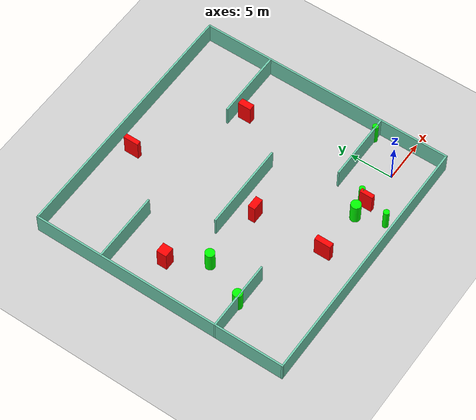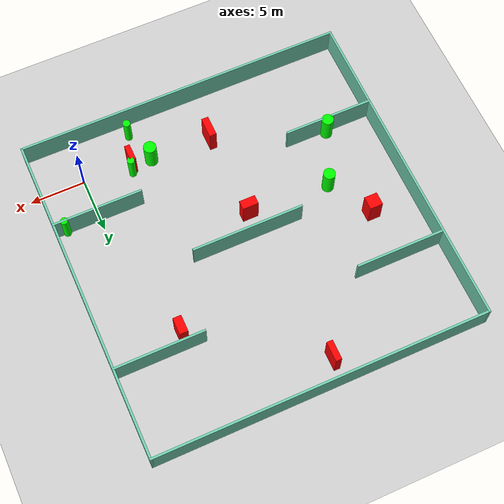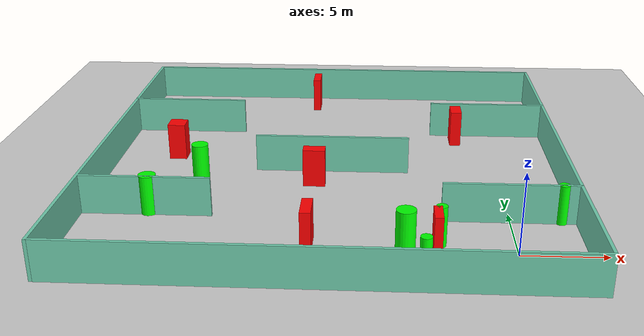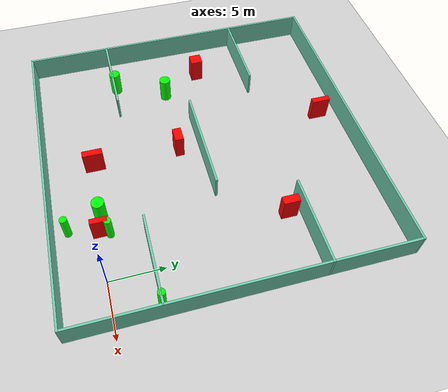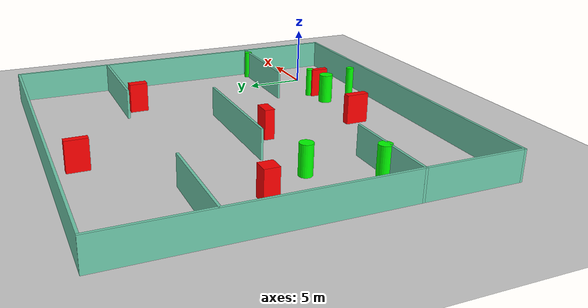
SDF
<sdf version="1.7">
 <world name="default">
  <light name="sun" type="directional">
   <pose>0 0 10 0 -0 0</pose>
   <diffuse>0.8 0.8 0.8 1</diffuse>
   <specular>0.2 0.2 0.2 1</specular>
   <attenuation>
    <range>1000</range>
    <constant>0.9</constant>
    <linear>0.01</linear>
    <quadratic>0.001</quadratic>
   </attenuation>
   <direction>-0.5 0.1 -0.9</direction>
   <spot><inner_angle>0</inner_angle><outer_angle>0</outer_angle><falloff>0</falloff></spot>
  </light>
  <model name="ground_plane">
   <static>1</static>
   <link name="link">
    <collision name="collision">
     <geometry><plane><normal>0 0 1</normal><size>100 100</size></plane></geometry>
     <surface>
      <contact><collide_bitmask>65535</collide_bitmask></contact>
      <friction><ode><mu>100</mu><mu2>50</mu2></ode></friction>
     </surface>
    </collision>
    <visual name="visual">
     <cast_shadows>0</cast_shadows>
     <geometry><plane><normal>0 0 1</normal><size>100 100</size></plane></geometry>
     <material>
      <script><uri>file://media/materials/scripts/gazebo.material</uri><name>Gazebo/Grey</name></script>
     </material>
    </visual>
   </link>
  </model>
  <gravity>0 0 -9.8</gravity>
  <magnetic_field>6e-06 2.3e-05 -4.2e-05</magnetic_field>
  <atmosphere type="adiabatic"/>
  <physics type="ode">
   <max_step_size>0.001</max_step_size>
   <real_time_factor>1</real_time_factor>
   <real_time_update_rate>1000</real_time_update_rate>
  </physics>
  <scene><ambient>0.4 0.4 0.4 1</ambient><background>0.7 0.7 0.7 1</background><shadows>1</shadows></scene>
  <spherical_coordinates>
   <surface_model>EARTH_WGS84</surface_model>
   <latitude_deg>0</latitude_deg>
   <longitude_deg>0</longitude_deg>
   <elevation>0</elevation>
   <heading_deg>0</heading_deg>
  </spherical_coordinates>
  <model name="my_base_walls">
   <link name="Wall_10">
    <collision name="Wall_10_Collision">
     <geometry><box><size>8.2 0.2 2.5</size></box></geometry>
     <pose>0 0 1.25 0 -0 0</pose>
    </collision>
    <visual name="Wall_10_Visual">
     <pose>0 0 1.25 0 -0 0</pose>
     <geometry><box><size>8.2 0.2 2.5</size></box></geometry>
     <material>
      <script><uri>file://media/materials/scripts/gazebo.material</uri><name>Gazebo/Grey</name></script>
      <ambient>0.435294 0.796078 0.67451 1</ambient>
     </material>
     <meta><layer>0</layer></meta>
    </visual>
    <pose>-11 -7 0 0 -0 0</pose>
   </link>
   <link name="Wall_12">
    <collision name="Wall_12_Collision">
     <geometry><box><size>8.2 0.2 2.5</size></box></geometry>
     <pose>0 0 1.25 0 -0 0</pose>
    </collision>
    <visual name="Wall_12_Visual">
     <pose>0 0 1.25 0 -0 0</pose>
     <geometry><box><size>8.2 0.2 2.5</size></box></geometry>
     <material>
      <script><uri>file://media/materials/scripts/gazebo.material</uri><name>Gazebo/Grey</name></script>
      <ambient>0.435294 0.796078 0.67451 1</ambient>
     </material>
     <meta><layer>0</layer></meta>
    </visual>
    <pose>-11 7 0 0 -0 0</pose>
   </link>
   <link name="Wall_14">
    <collision name="Wall_14_Collision">
     <geometry><box><size>8.2 0.2 2.5</size></box></geometry>
     <pose>0 0 1.25 0 -0 0</pose>
    </collision>
    <visual name="Wall_14_Visual">
     <pose>0 0 1.25 0 -0 0</pose>
     <geometry><box><size>8.2 0.2 2.5</size></box></geometry>
     <material>
      <script><uri>file://media/materials/scripts/gazebo.material</uri><name>Gazebo/Grey</name></script>
      <ambient>0.435294 0.796078 0.67451 1</ambient>
     </material>
     <meta><layer>0</layer></meta>
    </visual>
    <pose>11 7 0 0 -0 3.14159</pose>
   </link>
   <link name="Wall_16">
    <collision name="Wall_16_Collision">
     <geometry><box><size>10.2 0.2 2.5</size></box></geometry>
     <pose>0 0 1.25 0 -0 0</pose>
    </collision>
    <visual name="Wall_16_Visual">
     <pose>0 0 1.25 0 -0 0</pose>
     <geometry><box><size>10.2 0.2 2.5</size></box></geometry>
     <material>
      <script><uri>file://media/materials/scripts/gazebo.material</uri><name>Gazebo/Grey</name></script>
      <ambient>0.435294 0.796078 0.67451 1</ambient>
     </material>
     <meta><layer>0</layer></meta>
    </visual>
    <pose>0 0 0 0 -0 3.14159</pose>
   </link>
   <link name="Wall_2">
    <collision name="Wall_2_Collision">
     <geometry><box><size>30.2 0.2 2.5</size></box></geometry>
     <pose>0 0 1.25 0 -0 0</pose>
    </collision>
    <visual name="Wall_2_Visual">
     <pose>0 0 1.25 0 -0 0</pose>
     <geometry><box><size>30.2 0.2 2.5</size></box></geometry>
     <material>
      <script><uri>file://media/materials/scripts/gazebo.material</uri><name>Gazebo/Grey</name></script>
      <ambient>0.435294 0.796078 0.67451 1</ambient>
     </material>
     <meta><layer>0</layer></meta>
    </visual>
    <pose>0 -15 0 0 -0 3.14159</pose>
   </link>
   <link name="Wall_3">
    <collision name="Wall_3_Collision">
     <geometry><box><size>30.2 0.2 2.5</size></box></geometry>
     <pose>0 0 1.25 0 -0 0</pose>
    </collision>
    <visual name="Wall_3_Visual">
     <pose>0 0 1.25 0 -0 0</pose>
     <geometry><box><size>30.2 0.2 2.5</size></box></geometry>
     <material>
      <script><uri>file://media/materials/scripts/gazebo.material</uri><name>Gazebo/Grey</name></script>
      <ambient>0.435294 0.796078 0.67451 1</ambient>
     </material>
     <meta><layer>0</layer></meta>
    </visual>
    <pose>-15 0 0 0 -0 1.5708</pose>
   </link>
   <link name="Wall_4">
    <collision name="Wall_4_Collision">
     <geometry><box><size>30.2 0.2 2.5</size></box></geometry>
     <pose>0 0 1.25 0 -0 0</pose>
    </collision>
    <visual name="Wall_4_Visual">
     <pose>0 0 1.25 0 -0 0</pose>
     <geometry><box><size>30.2 0.2 2.5</size></box></geometry>
     <material>
      <script><uri>file://media/materials/scripts/gazebo.material</uri><name>Gazebo/Grey</name></script>
      <ambient>0.435294 0.796078 0.67451 1</ambient>
     </material>
     <meta><layer>0</layer></meta>
    </visual>
    <pose>0 15 0 0 -0 0</pose>
   </link>
   <link name="Wall_6">
    <collision name="Wall_6_Collision">
     <geometry><box><size>30.2 0.2 2.5</size></box></geometry>
     <pose>0 0 1.25 0 -0 0</pose>
    </collision>
    <visual name="Wall_6_Visual">
     <pose>0 0 1.25 0 -0 0</pose>
     <geometry><box><size>30.2 0.2 2.5</size></box></geometry>
     <material>
      <script><uri>file://media/materials/scripts/gazebo.material</uri><name>Gazebo/Grey</name></script>
      <ambient>0.435294 0.796078 0.67451 1</ambient>
     </material>
     <meta><layer>0</layer></meta>
    </visual>
    <pose>15 0 0 0 -0 1.5708</pose>
   </link>
   <link name="Wall_8">
    <collision name="Wall_8_Collision">
     <geometry><box><size>8.2 0.2 2.5</size></box></geometry>
     <pose>0 0 1.25 0 -0 0</pose>
    </collision>
    <visual name="Wall_8_Visual">
     <pose>0 0 1.25 0 -0 0</pose>
     <geometry><box><size>8.2 0.2 2.5</size></box></geometry>
     <material>
      <script><uri>file://media/materials/scripts/gazebo.material</uri><name>Gazebo/Grey</name></script>
      <ambient>0.435294 0.796078 0.67451 1</ambient>
     </material>
     <meta><layer>0</layer></meta>
    </visual>
    <pose>11 -7 0 0 -0 3.14159</pose>
   </link>
   <static>1</static>
   <pose>-11 11 0 0 -0 0</pose>
  </model>
  <model name="cylinder1">
   <static>1</static>
   <link name="link">
    <inertial>
     <mass>1</mass>
     <inertia><ixx>0.5</ixx><ixy>0</ixy><ixz>0</ixz><iyy>0.5</iyy><iyz>0</iyz><izz>1</izz></inertia>
    </inertial>
    <collision name="collision">
     <geometry><cylinder><radius>0.3335902493551201</radius><length>2.5</length></cylinder></geometry>
    </collision>
    <visual name="visual">
     <geometry><cylinder><radius>0.3335902493551201</radius><length>2.5</length></cylinder></geometry>
     <material>
      <ambient>0 1 0 1</ambient>
      <diffuse>0 1 0 1</diffuse>
      <specular>0.1 0.1 0.1 1</specular>
      <emissive>0 0 0 0</emissive>
     </material>
    </visual>
   </link>
   <pose>-5.3332053486320845 -2.670968357077099 1.25 0 0 0</pose>
  </model>
  <model name="cylinder2">
   <static>1</static>
   <link name="link">
    <inertial>
     <mass>1</mass>
     <inertia><ixx>0.5</ixx><ixy>0</ixy><ixz>0</ixz><iyy>0.5</iyy><iyz>0</iyz><izz>1</izz></inertia>
    </inertial>
    <collision name="collision">
     <geometry><cylinder><radius>0.3280164197780906</radius><length>2.5</length></cylinder></geometry>
    </collision>
    <visual name="visual">
     <geometry><cylinder><radius>0.3280164197780906</radius><length>2.5</length></cylinder></geometry>
     <material>
      <ambient>0 1 0 1</ambient>
      <diffuse>0 1 0 1</diffuse>
      <specular>0.1 0.1 0.1 1</specular>
      <emissive>0 0 0 0</emissive>
     </material>
    </visual>
   </link>
   <pose>-4.3039774152890935 0.9352588505713437 1.25 0 0 0</pose>
  </model>
  <model name="cylinder3">
   <static>1</static>
   <link name="link">
    <inertial>
     <mass>1</mass>
     <inertia><ixx>0.5</ixx><ixy>0</ixy><ixz>0</ixz><iyy>0.5</iyy><iyz>0</iyz><izz>1</izz></inertia>
    </inertial>
    <collision name="collision">
     <geometry><cylinder><radius>0.5406572472548158</radius><length>2.5</length></cylinder></geometry>
    </collision>
    <visual name="visual">
     <geometry><cylinder><radius>0.5406572472548158</radius><length>2.5</length></cylinder></geometry>
     <material>
      <ambient>0 1 0 1</ambient>
      <diffuse>0 1 0 1</diffuse>
      <specular>0.1 0.1 0.1 1</specular>
      <emissive>0 0 0 0</emissive>
     </material>
    </visual>
   </link>
   <pose>-19.54890671390715 9.1919313240223 1.25 0 0 0</pose>
  </model>
  <model name="cylinder4">
   <static>1</static>
   <link name="link">
    <inertial>
     <mass>1</mass>
     <inertia><ixx>0.5</ixx><ixy>0</ixy><ixz>0</ixz><iyy>0.5</iyy><iyz>0</iyz><izz>1</izz></inertia>
    </inertial>
    <collision name="collision">
     <geometry><cylinder><radius>0.3309514483923801</radius><length>2.5</length></cylinder></geometry>
    </collision>
    <visual name="visual">
     <geometry><cylinder><radius>0.3309514483923801</radius><length>2.5</length></cylinder></geometry>
     <material>
      <ambient>0 1 0 1</ambient>
      <diffuse>0 1 0 1</diffuse>
      <specular>0.1 0.1 0.1 1</specular>
      <emissive>0 0 0 0</emissive>
     </material>
    </visual>
   </link>
   <pose>3.028778656083979 4.0456732930563515 1.25 0 0 0</pose>
  </model>
  <model name="cylinder5">
   <static>1</static>
   <link name="link">
    <inertial>
     <mass>1</mass>
     <inertia><ixx>0.5</ixx><ixy>0</ixy><ixz>0</ixz><iyy>0.5</iyy><iyz>0</iyz><izz>1</izz></inertia>
    </inertial>
    <collision name="collision">
     <geometry><cylinder><radius>0.5789729623009476</radius><length>2.5</length></cylinder></geometry>
    </collision>
    <visual name="visual">
     <geometry><cylinder><radius>0.5789729623009476</radius><length>2.5</length></cylinder></geometry>
     <material>
      <ambient>0 1 0 1</ambient>
      <diffuse>0 1 0 1</diffuse>
      <specular>0.1 0.1 0.1 1</specular>
      <emissive>0 0 0 0</emissive>
     </material>
    </visual>
   </link>
   <pose>-6.311733981271644 0.37789206911282447 1.25 0 0 0</pose>
  </model>
  <model name="cylinder6">
   <static>1</static>
   <link name="link">
    <inertial>
     <mass>1</mass>
     <inertia><ixx>0.5</ixx><ixy>0</ixy><ixz>0</ixz><iyy>0.5</iyy><iyz>0</iyz><izz>1</izz></inertia>
    </inertial>
    <collision name="collision">
     <geometry><cylinder><radius>0.5354286434833196</radius><length>2.5</length></cylinder></geometry>
    </collision>
    <visual name="visual">
     <geometry><cylinder><radius>0.5354286434833196</radius><length>2.5</length></cylinder></geometry>
     <material>
      <ambient>0 1 0 1</ambient>
      <diffuse>0 1 0 1</diffuse>
      <specular>0.1 0.1 0.1 1</specular>
      <emissive>0 0 0 0</emissive>
     </material>
    </visual>
   </link>
   <pose>-21.77783443997287 4.242510946505358 1.25 0 0 0</pose>
  </model>
  <model name="box1">
   <static>1</static>
   <link name="link">
    <inertial>
     <mass>1</mass>
     <inertia><ixx>0.083</ixx><ixy>0</ixy><ixz>0</ixz><iyy>0.083</iyy><iyz>0</iyz><izz>0.083</izz></inertia>
    </inertial>
    <collision name="collision">
     <geometry><box><size>0.763880097938365 1.5253157981114192 2.5</size></box></geometry>
    </collision>
    <visual name="visual">
     <geometry><box><size>0.763880097938365 1.5253157981114192 2.5</size></box></geometry>
     <material>
      <ambient>1 0 0 1</ambient>
      <diffuse>1 0 0 1</diffuse>
      <specular>0.1 0.1 0.1 1</specular>
      <emissive>0 0 0 0</emissive>
     </material>
    </visual>
    <sensor name="my_contact" type="contact">
     <contact><collision>box_collision</collision><topic>__default_topic__</topic></contact>
    </sensor>
   </link>
   <pose>-2.3808608866580947 16.736700203657602 1.25 0 0 0</pose>
  </model>
  <model name="box2">
   <static>1</static>
   <link name="link">
    <inertial>
     <mass>1</mass>
     <inertia><ixx>0.083</ixx><ixy>0</ixy><ixz>0</ixz><iyy>0.083</iyy><iyz>0</iyz><izz>0.083</izz></inertia>
    </inertial>
    <collision name="collision">
     <geometry><box><size>1.4342238772789222 0.8289848566742204 2.5</size></box></geometry>
    </collision>
    <visual name="visual">
     <geometry><box><size>1.4342238772789222 0.8289848566742204 2.5</size></box></geometry>
     <material>
      <ambient>1 0 0 1</ambient>
      <diffuse>1 0 0 1</diffuse>
      <specular>0.1 0.1 0.1 1</specular>
      <emissive>0 0 0 0</emissive>
     </material>
    </visual>
    <sensor name="my_contact" type="contact">
     <contact><collision>box_collision</collision><topic>__default_topic__</topic></contact>
    </sensor>
   </link>
   <pose>-12.045646882194362 8.863686895364753 1.25 0 0 0</pose>
  </model>
  <model name="box3">
   <static>1</static>
   <link name="link">
    <inertial>
     <mass>1</mass>
     <inertia><ixx>0.083</ixx><ixy>0</ixy><ixz>0</ixz><iyy>0.083</iyy><iyz>0</iyz><izz>0.083</izz></inertia>
    </inertial>
    <collision name="collision">
     <geometry><box><size>0.6410993946689783 1.879172700375832 2.5</size></box></geometry>
    </collision>
    <visual name="visual">
     <geometry><box><size>0.6410993946689783 1.879172700375832 2.5</size></box></geometry>
     <material>
      <ambient>1 0 0 1</ambient>
      <diffuse>1 0 0 1</diffuse>
      <specular>0.1 0.1 0.1 1</specular>
      <emissive>0 0 0 0</emissive>
     </material>
    </visual>
    <sensor name="my_contact" type="contact">
     <contact><collision>box_collision</collision><topic>__default_topic__</topic></contact>
    </sensor>
   </link>
   <pose>-11.869814678875704 0.5970934523940579 1.25 0 0 0</pose>
  </model>
  <model name="box4">
   <static>1</static>
   <link name="link">
    <inertial>
     <mass>1</mass>
     <inertia><ixx>0.083</ixx><ixy>0</ixy><ixz>0</ixz><iyy>0.083</iyy><iyz>0</iyz><izz>0.083</izz></inertia>
    </inertial>
    <collision name="collision">
     <geometry><box><size>0.5017627874681578 1.5283330145524063 2.5</size></box></geometry>
    </collision>
    <visual name="visual">
     <geometry><box><size>0.5017627874681578 1.5283330145524063 2.5</size></box></geometry>
     <material>
      <ambient>1 0 0 1</ambient>
      <diffuse>1 0 0 1</diffuse>
      <specular>0.1 0.1 0.1 1</specular>
      <emissive>0 0 0 0</emissive>
     </material>
    </visual>
    <sensor name="my_contact" type="contact">
     <contact><collision>box_collision</collision><topic>__default_topic__</topic></contact>
    </sensor>
   </link>
   <pose>-4.539183473571544 0.17790489309702817 1.25 0 0 0</pose>
  </model>
  <model name="box5">
   <static>1</static>
   <link name="link">
    <inertial>
     <mass>1</mass>
     <inertia><ixx>0.083</ixx><ixy>0</ixy><ixz>0</ixz><iyy>0.083</iyy><iyz>0</iyz><izz>0.083</izz></inertia>
    </inertial>
    <collision name="collision">
     <geometry><box><size>1.1834348754941946 1.1913413277872402 2.5</size></box></geometry>
    </collision>
    <visual name="visual">
     <geometry><box><size>1.1834348754941946 1.1913413277872402 2.5</size></box></geometry>
     <material>
      <ambient>1 0 0 1</ambient>
      <diffuse>1 0 0 1</diffuse>
      <specular>0.1 0.1 0.1 1</specular>
      <emissive>0 0 0 0</emissive>
     </material>
    </visual>
    <sensor name="my_contact" type="contact">
     <contact><collision>box_collision</collision><topic>__default_topic__</topic></contact>
    </sensor>
   </link>
   <pose>-21.857450971506008 13.104690683367746 1.25 0 0 0</pose>
  </model>
  <model name="box6">
   <static>1</static>
   <link name="link">
    <inertial>
     <mass>1</mass>
     <inertia><ixx>0.083</ixx><ixy>0</ixy><ixz>0</ixz><iyy>0.083</iyy><iyz>0</iyz><izz>0.083</izz></inertia>
    </inertial>
    <collision name="collision">
     <geometry><box><size>0.5460060871117427 1.7753181322140485 2.5</size></box></geometry>
    </collision>
    <visual name="visual">
     <geometry><box><size>0.5460060871117427 1.7753181322140485 2.5</size></box></geometry>
     <material>
      <ambient>1 0 0 1</ambient>
      <diffuse>1 0 0 1</diffuse>
      <specular>0.1 0.1 0.1 1</specular>
      <emissive>0 0 0 0</emissive>
     </material>
    </visual>
    <sensor name="my_contact" type="contact">
     <contact><collision>box_collision</collision><topic>__default_topic__</topic></contact>
    </sensor>
   </link>
   <pose>-12.870860285361507 23.869273182523838 1.25 0 0 0</pose>
  </model>
 </world>
</sdf>
